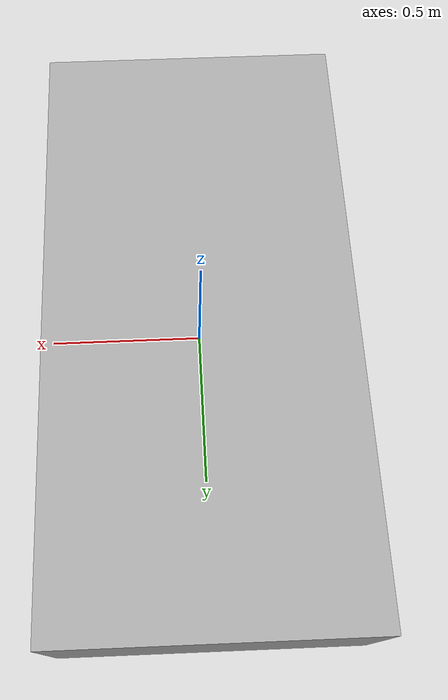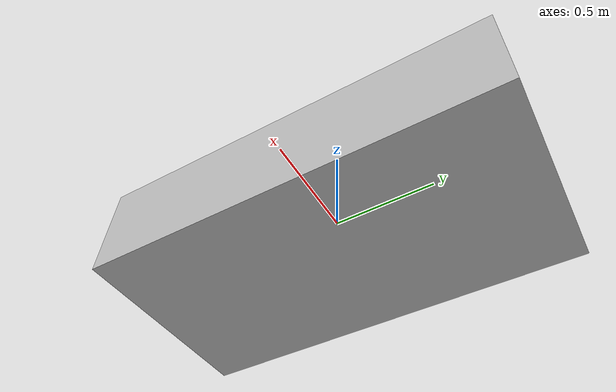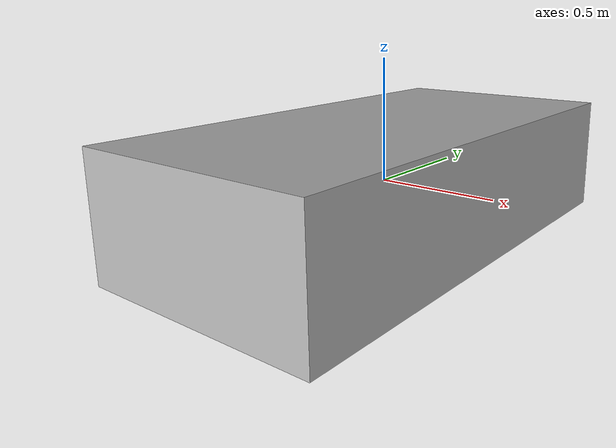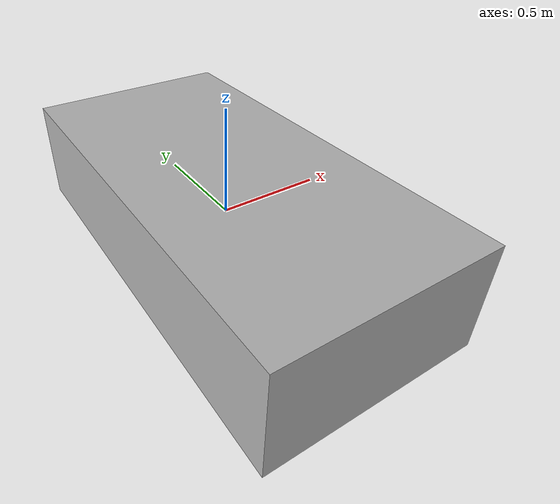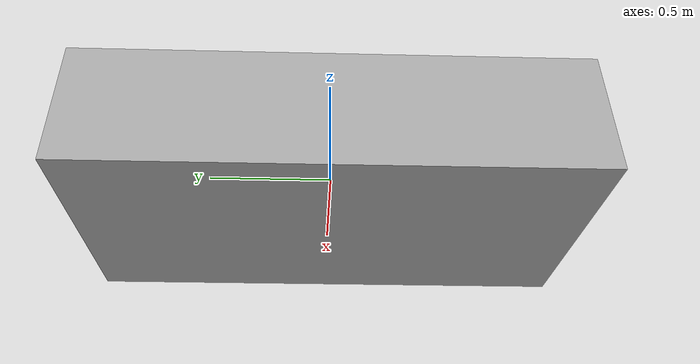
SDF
<?xml version="1.0" ?>
<sdf version="1.10">
  <model name="body">
    <pose>0 0 0 0 0 0</pose>

    <link name="base_link">
      <pose>0 0 0 0 0 0</pose>

      <!-- Visuele representatie -->
      <visual name="body_visual">
        <geometry>
          <box>
            <size>1 2 0.5</size>
          </box>
        </geometry>
        <material>
          <ambient>0.5 0.5 0.5 1</ambient>
          <diffuse>0.7 0.7 0.7 1</diffuse>
        </material>
      </visual>

      <!-- Botsing -->
      <collision name="body_collision">
        <geometry>
          <box>
            <size>2 4 1</size>
          </box>
        </geometry>
      </collision>

      <!-- Massa en traagheid -->
      <inertial>
        <mass>1.0</mass>
      </inertial>

      <!-- Front camera sensor -->
      <sensor name="front_camera" type="camera">
        <!-- Positie: 0.6m voor de body, 0.25m boven de basis -->
        <pose>0.6 0 0.25 0 0 0</pose>
        <camera>
          <horizontal_fov>1.047</horizontal_fov>
          <image>
            <width>640</width>
            <height>480</height>
          </image>
          <clip>
            <near>0.1</near>
            <far>100</far>
          </clip>
        </camera>
        <always_on>1</always_on>
        <update_rate>1</update_rate>
        <visualize>true</visualize>
        <topic>front_camera</topic>
      </sensor>

    <sensor name="imu_sensor" type="imu">
      <always_on>1</always_on>
      <update_rate>1</update_rate>
      <visualize>true</visualize>
      <topic>/imu</topic>
      <plugin filename="gz-sensors9-system" name="gz::sensors::systems::Sensors"/>
      <!-- Noise model -->
      <imu>
        <angular_velocity>
          <noise>
            <type>gaussian</type>
            <mean>0.0</mean>
            <stddev>0.001</stddev>    <!-- pas aan voor meer/minder ruis -->
          </noise>
        </angular_velocity>
        <linear_acceleration>
          <noise>
            <type>gaussian</type>
            <mean>0.0</mean>
            <stddev>0.1</stddev>
          </noise>
        </linear_acceleration>
      </imu>
    </sensor>

    </link>
  </model>
</sdf>
